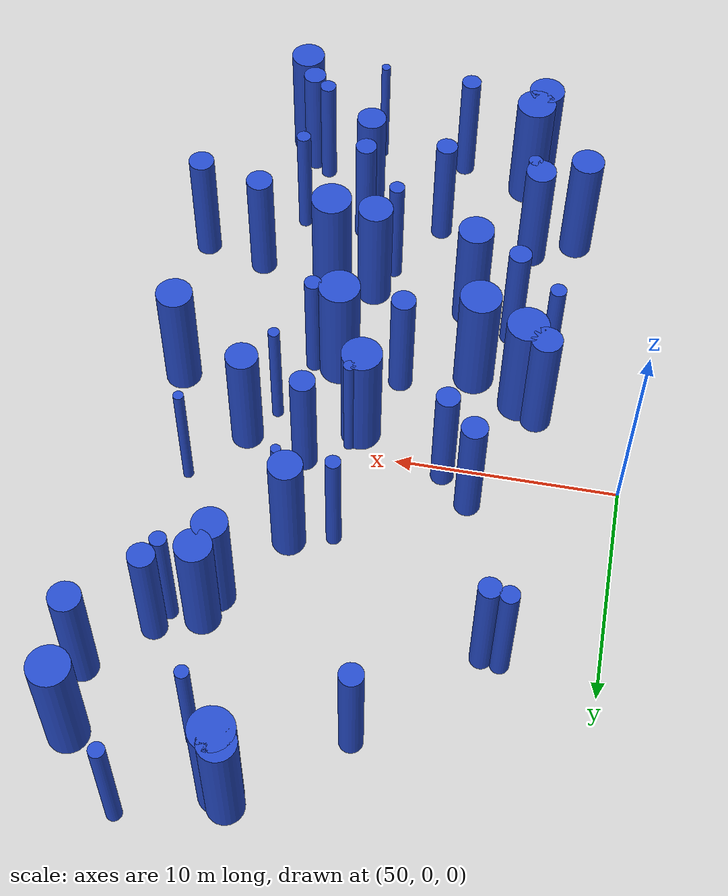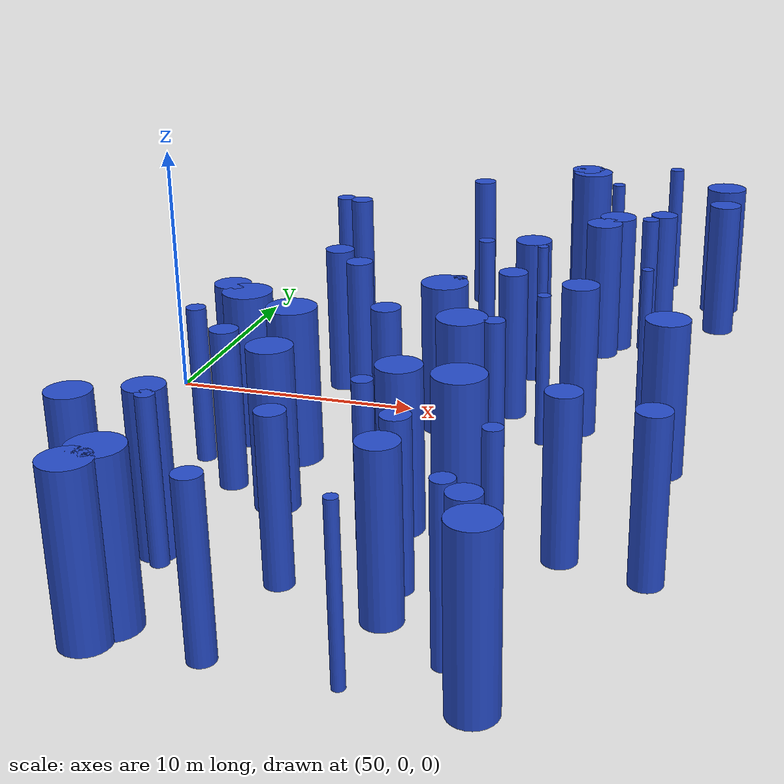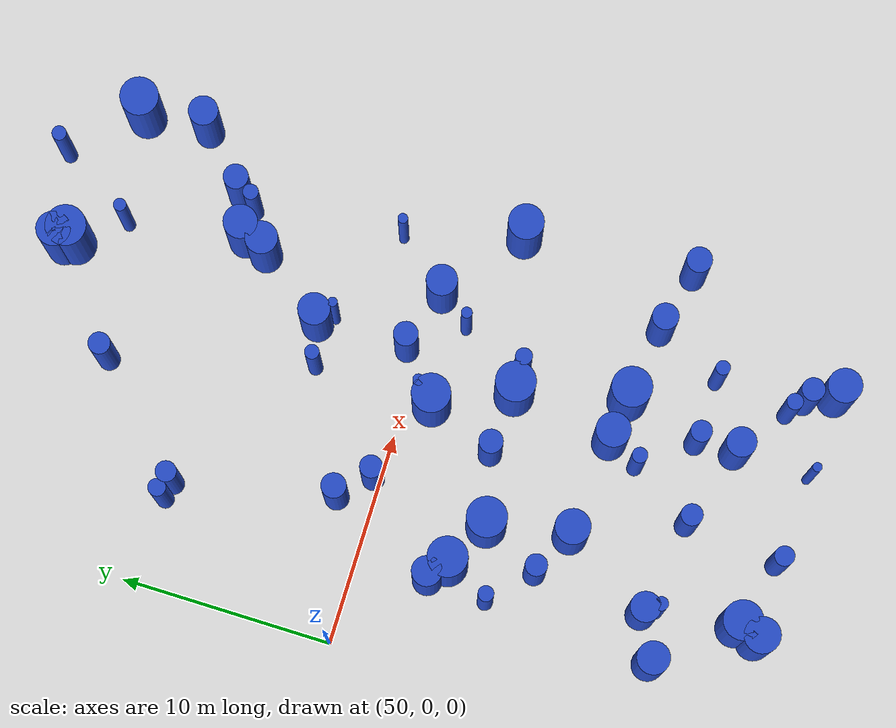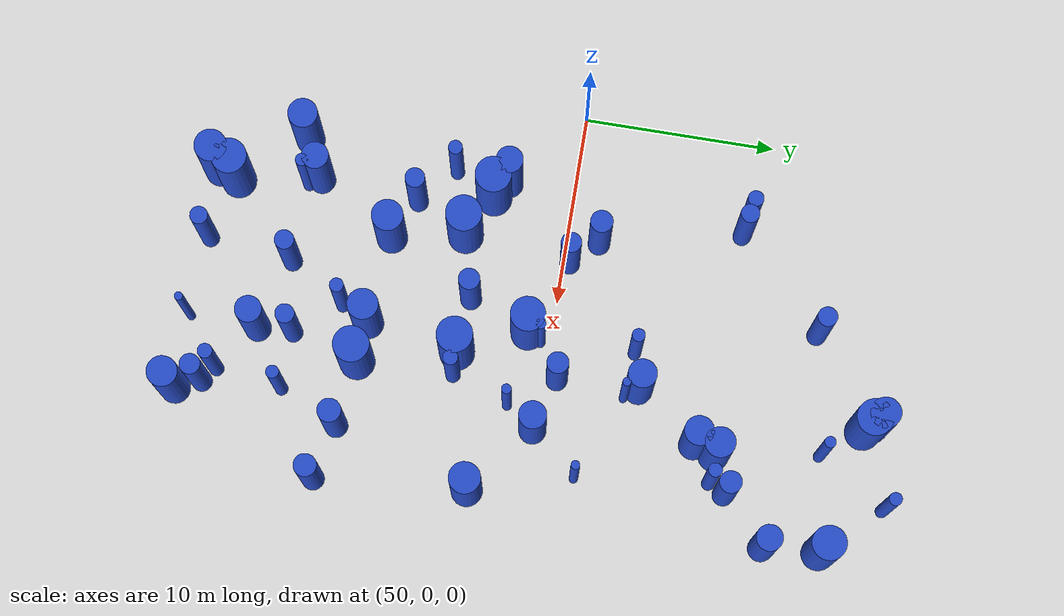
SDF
<sdf version="1.7">
 <world name="default">
  <model name="3">
   <static>1</static>
   <link name="link">
    <inertial>
     <mass>2</mass>
     <inertia><ixx>6.32373</ixx><ixy>0</ixy><ixz>0</ixz><iyy>6.32373</iyy><iyz>0</iyz><izz>0.647451</izz></inertia>
    </inertial>
    <collision name="collision">
     <geometry><cylinder><length>6</length><radius>0.804643</radius></cylinder></geometry>
     <surface><contact><collide_without_contact>1</collide_without_contact></contact></surface>
    </collision>
    <visual name="visual">
     <geometry><cylinder><length>6</length><radius>0.804643</radius></cylinder></geometry>
     <material>
      <script><uri>file://media/materials/scripts/gazebo.material</uri><name>Gazebo/Blue</name></script>
     </material>
    </visual>
    <gravity>0</gravity>
   </link>
   <pose>62.6464 -9.57824 3 0 -0 0</pose>
  </model>
  <model name="8">
   <static>1</static>
   <link name="link">
    <inertial>
     <mass>2</mass>
     <inertia><ixx>6.35619</ixx><ixy>0</ixy><ixz>0</ixz><iyy>6.35619</iyy><iyz>0</iyz><izz>0.712374</izz></inertia>
    </inertial>
    <collision name="collision">
     <geometry><cylinder><length>6</length><radius>0.844022</radius></cylinder></geometry>
     <surface><contact><collide_without_contact>1</collide_without_contact></contact></surface>
    </collision>
    <visual name="visual">
     <geometry><cylinder><length>6</length><radius>0.844022</radius></cylinder></geometry>
     <material>
      <script><uri>file://media/materials/scripts/gazebo.material</uri><name>Gazebo/Blue</name></script>
     </material>
    </visual>
    <gravity>0</gravity>
   </link>
   <pose>55.7877 -18.618 3 0 -0 0</pose>
  </model>
  <model name="16">
   <static>1</static>
   <link name="link">
    <inertial>
     <mass>2</mass>
     <inertia><ixx>6.15456</ixx><ixy>0</ixy><ixz>0</ixz><iyy>6.15456</iyy><iyz>0</iyz><izz>0.309126</izz></inertia>
    </inertial>
    <collision name="collision">
     <geometry><cylinder><length>6</length><radius>0.555991</radius></cylinder></geometry>
     <surface><contact><collide_without_contact>1</collide_without_contact></contact></surface>
    </collision>
    <visual name="visual">
     <geometry><cylinder><length>6</length><radius>0.555991</radius></cylinder></geometry>
     <material>
      <script><uri>file://media/materials/scripts/gazebo.material</uri><name>Gazebo/Blue</name></script>
     </material>
    </visual>
    <gravity>0</gravity>
   </link>
   <pose>60.5216 -4.47597 3 0 -0 0</pose>
  </model>
  <model name="20">
   <static>1</static>
   <link name="link">
    <inertial>
     <mass>2</mass>
     <inertia><ixx>6.44036</ixx><ixy>0</ixy><ixz>0</ixz><iyy>6.44036</iyy><iyz>0</iyz><izz>0.880718</izz></inertia>
    </inertial>
    <collision name="collision">
     <geometry><cylinder><length>6</length><radius>0.938466</radius></cylinder></geometry>
     <surface><contact><collide_without_contact>1</collide_without_contact></contact></surface>
    </collision>
    <visual name="visual">
     <geometry><cylinder><length>6</length><radius>0.938466</radius></cylinder></geometry>
     <material>
      <script><uri>file://media/materials/scripts/gazebo.material</uri><name>Gazebo/Blue</name></script>
     </material>
    </visual>
    <gravity>0</gravity>
   </link>
   <pose>54.9838 -4.14413 3 0 -0 0</pose>
  </model>
  <model name="24">
   <static>1</static>
   <link name="link">
    <inertial>
     <mass>2</mass>
     <inertia><ixx>6.03535</ixx><ixy>0</ixy><ixz>0</ixz><iyy>6.03535</iyy><iyz>0</iyz><izz>0.070702</izz></inertia>
    </inertial>
    <collision name="collision">
     <geometry><cylinder><length>6</length><radius>0.265898</radius></cylinder></geometry>
     <surface><contact><collide_without_contact>1</collide_without_contact></contact></surface>
    </collision>
    <visual name="visual">
     <geometry><cylinder><length>6</length><radius>0.265898</radius></cylinder></geometry>
     <material>
      <script><uri>file://media/materials/scripts/gazebo.material</uri><name>Gazebo/Blue</name></script>
     </material>
    </visual>
    <gravity>0</gravity>
   </link>
   <pose>62.2183 -0.535023 3 0 -0 0</pose>
  </model>
  <model name="29">
   <static>1</static>
   <link name="link">
    <inertial>
     <mass>2</mass>
     <inertia><ixx>6.0245</ixx><ixy>0</ixy><ixz>0</ixz><iyy>6.0245</iyy><iyz>0</iyz><izz>0.0489991</izz></inertia>
    </inertial>
    <collision name="collision">
     <geometry><cylinder><length>6</length><radius>0.221357</radius></cylinder></geometry>
     <surface><contact><collide_without_contact>1</collide_without_contact></contact></surface>
    </collision>
    <visual name="visual">
     <geometry><cylinder><length>6</length><radius>0.221357</radius></cylinder></geometry>
     <material>
      <script><uri>file://media/materials/scripts/gazebo.material</uri><name>Gazebo/Blue</name></script>
     </material>
    </visual>
    <gravity>0</gravity>
   </link>
   <pose>64.4402 4.20646 3 0 -0 0</pose>
  </model>
  <model name="37">
   <static>1</static>
   <link name="link">
    <inertial>
     <mass>2</mass>
     <inertia><ixx>6.05629</ixx><ixy>0</ixy><ixz>0</ixz><iyy>6.05629</iyy><iyz>0</iyz><izz>0.112587</izz></inertia>
    </inertial>
    <collision name="collision">
     <geometry><cylinder><length>6</length><radius>0.33554</radius></cylinder></geometry>
     <surface><contact><collide_without_contact>1</collide_without_contact></contact></surface>
    </collision>
    <visual name="visual">
     <geometry><cylinder><length>6</length><radius>0.33554</radius></cylinder></geometry>
     <material>
      <script><uri>file://media/materials/scripts/gazebo.material</uri><name>Gazebo/Blue</name></script>
     </material>
    </visual>
    <gravity>0</gravity>
   </link>
   <pose>68.1482 18.3489 3 0 -0 0</pose>
  </model>
  <model name="40">
   <static>1</static>
   <link name="link">
    <inertial>
     <mass>2</mass>
     <inertia><ixx>6.13935</ixx><ixy>0</ixy><ixz>0</ixz><iyy>6.13935</iyy><iyz>0</iyz><izz>0.278704</izz></inertia>
    </inertial>
    <collision name="collision">
     <geometry><cylinder><length>6</length><radius>0.527924</radius></cylinder></geometry>
     <surface><contact><collide_without_contact>1</collide_without_contact></contact></surface>
    </collision>
    <visual name="visual">
     <geometry><cylinder><length>6</length><radius>0.527924</radius></cylinder></geometry>
     <material>
      <script><uri>file://media/materials/scripts/gazebo.material</uri><name>Gazebo/Blue</name></script>
     </material>
    </visual>
    <gravity>0</gravity>
   </link>
   <pose>57.8383 0.334925 3 0 -0 0</pose>
  </model>
  <model name="47">
   <static>1</static>
   <link name="link">
    <inertial>
     <mass>2</mass>
     <inertia><ixx>6.07665</ixx><ixy>0</ixy><ixz>0</ixz><iyy>6.07665</iyy><iyz>0</iyz><izz>0.153298</izz></inertia>
    </inertial>
    <collision name="collision">
     <geometry><cylinder><length>6</length><radius>0.391533</radius></cylinder></geometry>
     <surface><contact><collide_without_contact>1</collide_without_contact></contact></surface>
    </collision>
    <visual name="visual">
     <geometry><cylinder><length>6</length><radius>0.391533</radius></cylinder></geometry>
     <material>
      <script><uri>file://media/materials/scripts/gazebo.material</uri><name>Gazebo/Blue</name></script>
     </material>
    </visual>
    <gravity>0</gravity>
   </link>
   <pose>64.6323 -4.75905 3 0 -0 0</pose>
  </model>
  <model name="49">
   <static>1</static>
   <link name="link">
    <inertial>
     <mass>2</mass>
     <inertia><ixx>6.14289</ixx><ixy>0</ixy><ixz>0</ixz><iyy>6.14289</iyy><iyz>0</iyz><izz>0.285777</izz></inertia>
    </inertial>
    <collision name="collision">
     <geometry><cylinder><length>6</length><radius>0.534581</radius></cylinder></geometry>
     <surface><contact><collide_without_contact>1</collide_without_contact></contact></surface>
    </collision>
    <visual name="visual">
     <geometry><cylinder><length>6</length><radius>0.534581</radius></cylinder></geometry>
     <material>
      <script><uri>file://media/materials/scripts/gazebo.material</uri><name>Gazebo/Blue</name></script>
     </material>
    </visual>
    <gravity>0</gravity>
   </link>
   <pose>67.0462 -17.6442 3 0 -0 0</pose>
  </model>
  <model name="57">
   <static>1</static>
   <link name="link">
    <inertial>
     <mass>2</mass>
     <inertia>
      <ixx>6.04355</ixx>
      <ixy>0</ixy>
      <ixz>0</ixz>
      <iyy>6.04355</iyy>
      <iyz>0</iyz>
      <izz>0.0870977</izz>
     </inertia>
    </inertial>
    <collision name="collision">
     <geometry><cylinder><length>6</length><radius>0.295123</radius></cylinder></geometry>
     <surface><contact><collide_without_contact>1</collide_without_contact></contact></surface>
    </collision>
    <visual name="visual">
     <geometry><cylinder><length>6</length><radius>0.295123</radius></cylinder></geometry>
     <material>
      <script><uri>file://media/materials/scripts/gazebo.material</uri><name>Gazebo/Blue</name></script>
     </material>
    </visual>
    <gravity>0</gravity>
   </link>
   <pose>65.8384 14.7256 3 0 -0 0</pose>
  </model>
  <model name="62">
   <static>1</static>
   <link name="link">
    <inertial>
     <mass>2</mass>
     <inertia>
      <ixx>6.02704</ixx>
      <ixy>0</ixy>
      <ixz>0</ixz>
      <iyy>6.02704</iyy>
      <iyz>0</iyz>
      <izz>0.0540705</izz>
     </inertia>
    </inertial>
    <collision name="collision">
     <geometry><cylinder><length>6</length><radius>0.232531</radius></cylinder></geometry>
     <surface><contact><collide_without_contact>1</collide_without_contact></contact></surface>
    </collision>
    <visual name="visual">
     <geometry><cylinder><length>6</length><radius>0.232531</radius></cylinder></geometry>
     <material>
      <script><uri>file://media/materials/scripts/gazebo.material</uri><name>Gazebo/Blue</name></script>
     </material>
    </visual>
    <gravity>0</gravity>
   </link>
   <pose>69.0155 2.30709 3 0 -0 0</pose>
  </model>
  <model name="64">
   <static>1</static>
   <link name="link">
    <inertial>
     <mass>2</mass>
     <inertia><ixx>6.28961</ixx><ixy>0</ixy><ixz>0</ixz><iyy>6.28961</iyy><iyz>0</iyz><izz>0.579212</izz></inertia>
    </inertial>
    <collision name="collision">
     <geometry><cylinder><length>6</length><radius>0.76106</radius></cylinder></geometry>
     <surface><contact><collide_without_contact>1</collide_without_contact></contact></surface>
    </collision>
    <visual name="visual">
     <geometry><cylinder><length>6</length><radius>0.76106</radius></cylinder></geometry>
     <material>
      <script><uri>file://media/materials/scripts/gazebo.material</uri><name>Gazebo/Blue</name></script>
     </material>
    </visual>
    <gravity>0</gravity>
   </link>
   <pose>66.2997 8.17107 3 0 -0 0</pose>
  </model>
  <model name="69">
   <static>1</static>
   <link name="link">
    <inertial>
     <mass>2</mass>
     <inertia><ixx>6.13304</ixx><ixy>0</ixy><ixz>0</ixz><iyy>6.13304</iyy><iyz>0</iyz><izz>0.266084</izz></inertia>
    </inertial>
    <collision name="collision">
     <geometry><cylinder><length>6</length><radius>0.515834</radius></cylinder></geometry>
     <surface><contact><collide_without_contact>1</collide_without_contact></contact></surface>
    </collision>
    <visual name="visual">
     <geometry><cylinder><length>6</length><radius>0.515834</radius></cylinder></geometry>
     <material>
      <script><uri>file://media/materials/scripts/gazebo.material</uri><name>Gazebo/Blue</name></script>
     </material>
    </visual>
    <gravity>0</gravity>
   </link>
   <pose>55.7984 -8.05058 3 0 -0 0</pose>
  </model>
  <model name="75">
   <static>1</static>
   <link name="link">
    <inertial>
     <mass>2</mass>
     <inertia><ixx>6.43782</ixx><ixy>0</ixy><ixz>0</ixz><iyy>6.43782</iyy><iyz>0</iyz><izz>0.87563</izz></inertia>
    </inertial>
    <collision name="collision">
     <geometry><cylinder><length>6</length><radius>0.935751</radius></cylinder></geometry>
     <surface><contact><collide_without_contact>1</collide_without_contact></contact></surface>
    </collision>
    <visual name="visual">
     <geometry><cylinder><length>6</length><radius>0.935751</radius></cylinder></geometry>
     <material>
      <script><uri>file://media/materials/scripts/gazebo.material</uri><name>Gazebo/Blue</name></script>
     </material>
    </visual>
    <gravity>0</gravity>
   </link>
   <pose>63.437 -4.74428 3 0 -0 0</pose>
  </model>
  <model name="81">
   <static>1</static>
   <link name="link">
    <inertial>
     <mass>2</mass>
     <inertia><ixx>6.39682</ixx><ixy>0</ixy><ixz>0</ixz><iyy>6.39682</iyy><iyz>0</iyz><izz>0.793637</izz></inertia>
    </inertial>
    <collision name="collision">
     <geometry><cylinder><length>6</length><radius>0.890863</radius></cylinder></geometry>
     <surface><contact><collide_without_contact>1</collide_without_contact></contact></surface>
    </collision>
    <visual name="visual">
     <geometry><cylinder><length>6</length><radius>0.890863</radius></cylinder></geometry>
     <material>
      <script><uri>file://media/materials/scripts/gazebo.material</uri><name>Gazebo/Blue</name></script>
     </material>
    </visual>
    <gravity>0</gravity>
   </link>
   <pose>70.8405 15.4024 3 0 -0 0</pose>
  </model>
  <model name="88">
   <static>1</static>
   <link name="link">
    <inertial>
     <mass>2</mass>
     <inertia><ixx>6.06537</ixx><ixy>0</ixy><ixz>0</ixz><iyy>6.06537</iyy><iyz>0</iyz><izz>0.13075</izz></inertia>
    </inertial>
    <collision name="collision">
     <geometry><cylinder><length>6</length><radius>0.361593</radius></cylinder></geometry>
     <surface><contact><collide_without_contact>1</collide_without_contact></contact></surface>
    </collision>
    <visual name="visual">
     <geometry><cylinder><length>6</length><radius>0.361593</radius></cylinder></geometry>
     <material>
      <script><uri>file://media/materials/scripts/gazebo.material</uri><name>Gazebo/Blue</name></script>
     </material>
    </visual>
    <gravity>0</gravity>
   </link>
   <pose>61.8977 -11.0457 3 0 -0 0</pose>
  </model>
  <model name="99">
   <static>1</static>
   <link name="link">
    <inertial>
     <mass>2</mass>
     <inertia><ixx>6.13049</ixx><ixy>0</ixy><ixz>0</ixz><iyy>6.13049</iyy><iyz>0</iyz><izz>0.260973</izz></inertia>
    </inertial>
    <collision name="collision">
     <geometry><cylinder><length>6</length><radius>0.510855</radius></cylinder></geometry>
     <surface><contact><collide_without_contact>1</collide_without_contact></contact></surface>
    </collision>
    <visual name="visual">
     <geometry><cylinder><length>6</length><radius>0.510855</radius></cylinder></geometry>
     <material>
      <script><uri>file://media/materials/scripts/gazebo.material</uri><name>Gazebo/Blue</name></script>
     </material>
    </visual>
    <gravity>0</gravity>
   </link>
   <pose>59.5506 13.6937 3 0 -0 0</pose>
  </model>
  <model name="108">
   <static>1</static>
   <link name="link">
    <inertial>
     <mass>2</mass>
     <inertia><ixx>6.24076</ixx><ixy>0</ixy><ixz>0</ixz><iyy>6.24076</iyy><iyz>0</iyz><izz>0.481525</izz></inertia>
    </inertial>
    <collision name="collision">
     <geometry><cylinder><length>6</length><radius>0.69392</radius></cylinder></geometry>
     <surface><contact><collide_without_contact>1</collide_without_contact></contact></surface>
    </collision>
    <visual name="visual">
     <geometry><cylinder><length>6</length><radius>0.69392</radius></cylinder></geometry>
     <material>
      <script><uri>file://media/materials/scripts/gazebo.material</uri><name>Gazebo/Blue</name></script>
     </material>
    </visual>
    <gravity>0</gravity>
   </link>
   <pose>63.8163 -15.2405 3 0 -0 0</pose>
  </model>
  <model name="110">
   <static>1</static>
   <link name="link">
    <inertial>
     <mass>2</mass>
     <inertia><ixx>6.40953</ixx><ixy>0</ixy><ixz>0</ixz><iyy>6.40953</iyy><iyz>0</iyz><izz>0.819064</izz></inertia>
    </inertial>
    <collision name="collision">
     <geometry><cylinder><length>6</length><radius>0.905021</radius></cylinder></geometry>
     <surface><contact><collide_without_contact>1</collide_without_contact></contact></surface>
    </collision>
    <visual name="visual">
     <geometry><cylinder><length>6</length><radius>0.905021</radius></cylinder></geometry>
     <material>
      <script><uri>file://media/materials/scripts/gazebo.material</uri><name>Gazebo/Blue</name></script>
     </material>
    </visual>
    <gravity>0</gravity>
   </link>
   <pose>61.8127 -1.25307 3 0 -0 0</pose>
  </model>
  <model name="119">
   <static>1</static>
   <link name="link">
    <inertial>
     <mass>2</mass>
     <inertia><ixx>6.33909</ixx><ixy>0</ixy><ixz>0</ixz><iyy>6.33909</iyy><iyz>0</iyz><izz>0.67818</izz></inertia>
    </inertial>
    <collision name="collision">
     <geometry><cylinder><length>6</length><radius>0.823517</radius></cylinder></geometry>
     <surface><contact><collide_without_contact>1</collide_without_contact></contact></surface>
    </collision>
    <visual name="visual">
     <geometry><cylinder><length>6</length><radius>0.823517</radius></cylinder></geometry>
     <material>
      <script><uri>file://media/materials/scripts/gazebo.material</uri><name>Gazebo/Blue</name></script>
     </material>
    </visual>
    <gravity>0</gravity>
   </link>
   <pose>70.5233 -3.06398 3 0 -0 0</pose>
  </model>
  <model name="147">
   <static>1</static>
   <link name="link">
    <inertial>
     <mass>2</mass>
     <inertia><ixx>6.2472</ixx><ixy>0</ixy><ixz>0</ixz><iyy>6.2472</iyy><iyz>0</iyz><izz>0.494401</izz></inertia>
    </inertial>
    <collision name="collision">
     <geometry><cylinder><length>6</length><radius>0.703136</radius></cylinder></geometry>
     <surface><contact><collide_without_contact>1</collide_without_contact></contact></surface>
    </collision>
    <visual name="visual">
     <geometry><cylinder><length>6</length><radius>0.703136</radius></cylinder></geometry>
     <material>
      <script><uri>file://media/materials/scripts/gazebo.material</uri><name>Gazebo/Blue</name></script>
     </material>
    </visual>
    <gravity>0</gravity>
   </link>
   <pose>55.4572 -13.2677 3 0 -0 0</pose>
  </model>
  <model name="148">
   <static>1</static>
   <link name="link">
    <inertial>
     <mass>2</mass>
     <inertia><ixx>6.16655</ixx><ixy>0</ixy><ixz>0</ixz><iyy>6.16655</iyy><iyz>0</iyz><izz>0.3331</izz></inertia>
    </inertial>
    <collision name="collision">
     <geometry><cylinder><length>6</length><radius>0.577148</radius></cylinder></geometry>
     <surface><contact><collide_without_contact>1</collide_without_contact></contact></surface>
    </collision>
    <visual name="visual">
     <geometry><cylinder><length>6</length><radius>0.577148</radius></cylinder></geometry>
     <material>
      <script><uri>file://media/materials/scripts/gazebo.material</uri><name>Gazebo/Blue</name></script>
     </material>
    </visual>
    <gravity>0</gravity>
   </link>
   <pose>68.6122 10.1034 3 0 -0 0</pose>
  </model>
  <model name="156">
   <static>1</static>
   <link name="link">
    <inertial>
     <mass>2</mass>
     <inertia><ixx>6.2462</ixx><ixy>0</ixy><ixz>0</ixz><iyy>6.2462</iyy><iyz>0</iyz><izz>0.492399</izz></inertia>
    </inertial>
    <collision name="collision">
     <geometry><cylinder><length>6</length><radius>0.701712</radius></cylinder></geometry>
     <surface><contact><collide_without_contact>1</collide_without_contact></contact></surface>
    </collision>
    <visual name="visual">
     <geometry><cylinder><length>6</length><radius>0.701712</radius></cylinder></geometry>
     <material>
      <script><uri>file://media/materials/scripts/gazebo.material</uri><name>Gazebo/Blue</name></script>
     </material>
    </visual>
    <gravity>0</gravity>
   </link>
   <pose>54.0935 -3.44264 3 0 -0 0</pose>
  </model>
  <model name="158">
   <static>1</static>
   <link name="link">
    <inertial>
     <mass>2</mass>
     <inertia><ixx>6.12372</ixx><ixy>0</ixy><ixz>0</ixz><iyy>6.12372</iyy><iyz>0</iyz><izz>0.24745</izz></inertia>
    </inertial>
    <collision name="collision">
     <geometry><cylinder><length>6</length><radius>0.497443</radius></cylinder></geometry>
     <surface><contact><collide_without_contact>1</collide_without_contact></contact></surface>
    </collision>
    <visual name="visual">
     <geometry><cylinder><length>6</length><radius>0.497443</radius></cylinder></geometry>
     <material>
      <script><uri>file://media/materials/scripts/gazebo.material</uri><name>Gazebo/Blue</name></script>
     </material>
    </visual>
    <gravity>0</gravity>
   </link>
   <pose>63.7529 -13.376 3 0 -0 0</pose>
  </model>
  <model name="159">
   <static>1</static>
   <link name="link">
    <inertial>
     <mass>2</mass>
     <inertia><ixx>6.12758</ixx><ixy>0</ixy><ixz>0</ixz><iyy>6.12758</iyy><iyz>0</iyz><izz>0.255169</izz></inertia>
    </inertial>
    <collision name="collision">
     <geometry><cylinder><length>6</length><radius>0.505142</radius></cylinder></geometry>
     <surface><contact><collide_without_contact>1</collide_without_contact></contact></surface>
    </collision>
    <visual name="visual">
     <geometry><cylinder><length>6</length><radius>0.505142</radius></cylinder></geometry>
     <material>
      <script><uri>file://media/materials/scripts/gazebo.material</uri><name>Gazebo/Blue</name></script>
     </material>
    </visual>
    <gravity>0</gravity>
   </link>
   <pose>60.0142 -14.0545 3 0 -0 0</pose>
  </model>
  <model name="165">
   <static>1</static>
   <link name="link">
    <inertial>
     <mass>2</mass>
     <inertia><ixx>6.31487</ixx><ixy>0</ixy><ixz>0</ixz><iyy>6.31487</iyy><iyz>0</iyz><izz>0.629742</izz></inertia>
    </inertial>
    <collision name="collision">
     <geometry><cylinder><length>6</length><radius>0.793563</radius></cylinder></geometry>
     <surface><contact><collide_without_contact>1</collide_without_contact></contact></surface>
    </collision>
    <visual name="visual">
     <geometry><cylinder><length>6</length><radius>0.793563</radius></cylinder></geometry>
     <material>
      <script><uri>file://media/materials/scripts/gazebo.material</uri><name>Gazebo/Blue</name></script>
     </material>
    </visual>
    <gravity>0</gravity>
   </link>
   <pose>67.6325 -18.9597 3 0 -0 0</pose>
  </model>
  <model name="170">
   <static>1</static>
   <link name="link">
    <inertial>
     <mass>2</mass>
     <inertia><ixx>6.29419</ixx><ixy>0</ixy><ixz>0</ixz><iyy>6.29419</iyy><iyz>0</iyz><izz>0.588384</izz></inertia>
    </inertial>
    <collision name="collision">
     <geometry><cylinder><length>6</length><radius>0.767062</radius></cylinder></geometry>
     <surface><contact><collide_without_contact>1</collide_without_contact></contact></surface>
    </collision>
    <visual name="visual">
     <geometry><cylinder><length>6</length><radius>0.767062</radius></cylinder></geometry>
     <material>
      <script><uri>file://media/materials/scripts/gazebo.material</uri><name>Gazebo/Blue</name></script>
     </material>
    </visual>
    <gravity>0</gravity>
   </link>
   <pose>53.3791 -14.2623 3 0 -0 0</pose>
  </model>
  <model name="175">
   <static>1</static>
   <link name="link">
    <inertial>
     <mass>2</mass>
     <inertia><ixx>6.05736</ixx><ixy>0</ixy><ixz>0</ixz><iyy>6.05736</iyy><iyz>0</iyz><izz>0.114717</izz></inertia>
    </inertial>
    <collision name="collision">
     <geometry><cylinder><length>6</length><radius>0.338699</radius></cylinder></geometry>
     <surface><contact><collide_without_contact>1</collide_without_contact></contact></surface>
    </collision>
    <visual name="visual">
     <geometry><cylinder><length>6</length><radius>0.338699</radius></cylinder></geometry>
     <material>
      <script><uri>file://media/materials/scripts/gazebo.material</uri><name>Gazebo/Blue</name></script>
     </material>
    </visual>
    <gravity>0</gravity>
   </link>
   <pose>62.0029 4.42406 3 0 -0 0</pose>
  </model>
  <model name="177">
   <static>1</static>
   <link name="link">
    <inertial>
     <mass>2</mass>
     <inertia><ixx>6.16054</ixx><ixy>0</ixy><ixz>0</ixz><iyy>6.16054</iyy><iyz>0</iyz><izz>0.321076</izz></inertia>
    </inertial>
    <collision name="collision">
     <geometry><cylinder><length>6</length><radius>0.566635</radius></cylinder></geometry>
     <surface><contact><collide_without_contact>1</collide_without_contact></contact></surface>
    </collision>
    <visual name="visual">
     <geometry><cylinder><length>6</length><radius>0.566635</radius></cylinder></geometry>
     <material>
      <script><uri>file://media/materials/scripts/gazebo.material</uri><name>Gazebo/Blue</name></script>
     </material>
    </visual>
    <gravity>0</gravity>
   </link>
   <pose>64.0385 0.626699 3 0 -0 0</pose>
  </model>
  <model name="179">
   <static>1</static>
   <link name="link">
    <inertial>
     <mass>2</mass>
     <inertia><ixx>6.17533</ixx><ixy>0</ixy><ixz>0</ixz><iyy>6.17533</iyy><iyz>0</iyz><izz>0.350655</izz></inertia>
    </inertial>
    <collision name="collision">
     <geometry><cylinder><length>6</length><radius>0.592162</radius></cylinder></geometry>
     <surface><contact><collide_without_contact>1</collide_without_contact></contact></surface>
    </collision>
    <visual name="visual">
     <geometry><cylinder><length>6</length><radius>0.592162</radius></cylinder></geometry>
     <material>
      <script><uri>file://media/materials/scripts/gazebo.material</uri><name>Gazebo/Blue</name></script>
     </material>
    </visual>
    <gravity>0</gravity>
   </link>
   <pose>71.1699 -11.0462 3 0 -0 0</pose>
  </model>
  <model name="186">
   <static>1</static>
   <link name="link">
    <inertial>
     <mass>2</mass>
     <inertia><ixx>6.06527</ixx><ixy>0</ixy><ixz>0</ixz><iyy>6.06527</iyy><iyz>0</iyz><izz>0.130536</izz></inertia>
    </inertial>
    <collision name="collision">
     <geometry><cylinder><length>6</length><radius>0.361297</radius></cylinder></geometry>
     <surface><contact><collide_without_contact>1</collide_without_contact></contact></surface>
    </collision>
    <visual name="visual">
     <geometry><cylinder><length>6</length><radius>0.361297</radius></cylinder></geometry>
     <material>
      <script><uri>file://media/materials/scripts/gazebo.material</uri><name>Gazebo/Blue</name></script>
     </material>
    </visual>
    <gravity>0</gravity>
   </link>
   <pose>68.142 9.25386 3 0 -0 0</pose>
  </model>
  <model name="199">
   <static>1</static>
   <link name="link">
    <inertial>
     <mass>2</mass>
     <inertia><ixx>6.31116</ixx><ixy>0</ixy><ixz>0</ixz><iyy>6.31116</iyy><iyz>0</iyz><izz>0.622311</izz></inertia>
    </inertial>
    <collision name="collision">
     <geometry><cylinder><length>6</length><radius>0.788867</radius></cylinder></geometry>
     <surface><contact><collide_without_contact>1</collide_without_contact></contact></surface>
    </collision>
    <visual name="visual">
     <geometry><cylinder><length>6</length><radius>0.788867</radius></cylinder></geometry>
     <material>
      <script><uri>file://media/materials/scripts/gazebo.material</uri><name>Gazebo/Blue</name></script>
     </material>
    </visual>
    <gravity>0</gravity>
   </link>
   <pose>66.7102 9.29517 3 0 -0 0</pose>
  </model>
  <model name="203">
   <static>1</static>
   <link name="link">
    <inertial>
     <mass>2</mass>
     <inertia><ixx>6.18882</ixx><ixy>0</ixy><ixz>0</ixz><iyy>6.18882</iyy><iyz>0</iyz><izz>0.377638</izz></inertia>
    </inertial>
    <collision name="collision">
     <geometry><cylinder><length>6</length><radius>0.614523</radius></cylinder></geometry>
     <surface><contact><collide_without_contact>1</collide_without_contact></contact></surface>
    </collision>
    <visual name="visual">
     <geometry><cylinder><length>6</length><radius>0.614523</radius></cylinder></geometry>
     <material>
      <script><uri>file://media/materials/scripts/gazebo.material</uri><name>Gazebo/Blue</name></script>
     </material>
    </visual>
    <gravity>0</gravity>
   </link>
   <pose>68.2499 -10.3285 3 0 -0 0</pose>
  </model>
  <model name="205">
   <static>1</static>
   <link name="link">
    <inertial>
     <mass>2</mass>
     <inertia><ixx>6.10686</ixx><ixy>0</ixy><ixz>0</ixz><iyy>6.10686</iyy><iyz>0</iyz><izz>0.213728</izz></inertia>
    </inertial>
    <collision name="collision">
     <geometry><cylinder><length>6</length><radius>0.462308</radius></cylinder></geometry>
     <surface><contact><collide_without_contact>1</collide_without_contact></contact></surface>
    </collision>
    <visual name="visual">
     <geometry><cylinder><length>6</length><radius>0.462308</radius></cylinder></geometry>
     <material>
      <script><uri>file://media/materials/scripts/gazebo.material</uri><name>Gazebo/Blue</name></script>
     </material>
    </visual>
    <gravity>0</gravity>
   </link>
   <pose>59.4641 -18.5496 3 0 -0 0</pose>
  </model>
  <model name="212">
   <static>1</static>
   <link name="link">
    <inertial>
     <mass>2</mass>
     <inertia><ixx>6.26079</ixx><ixy>0</ixy><ixz>0</ixz><iyy>6.26079</iyy><iyz>0</iyz><izz>0.521588</izz></inertia>
    </inertial>
    <collision name="collision">
     <geometry><cylinder><length>6</length><radius>0.722211</radius></cylinder></geometry>
     <surface><contact><collide_without_contact>1</collide_without_contact></contact></surface>
    </collision>
    <visual name="visual">
     <geometry><cylinder><length>6</length><radius>0.722211</radius></cylinder></geometry>
     <material>
      <script><uri>file://media/materials/scripts/gazebo.material</uri><name>Gazebo/Blue</name></script>
     </material>
    </visual>
    <gravity>0</gravity>
   </link>
   <pose>66.8526 -0.204385 3 0 -0 0</pose>
  </model>
  <model name="214">
   <static>1</static>
   <link name="link">
    <inertial>
     <mass>2</mass>
     <inertia><ixx>6.23355</ixx><ixy>0</ixy><ixz>0</ixz><iyy>6.23355</iyy><iyz>0</iyz><izz>0.467097</izz></inertia>
    </inertial>
    <collision name="collision">
     <geometry><cylinder><length>6</length><radius>0.683445</radius></cylinder></geometry>
     <surface><contact><collide_without_contact>1</collide_without_contact></contact></surface>
    </collision>
    <visual name="visual">
     <geometry><cylinder><length>6</length><radius>0.683445</radius></cylinder></geometry>
     <material>
      <script><uri>file://media/materials/scripts/gazebo.material</uri><name>Gazebo/Blue</name></script>
     </material>
    </visual>
    <gravity>0</gravity>
   </link>
   <pose>71.0638 12.4281 3 0 -0 0</pose>
  </model>
  <model name="218">
   <static>1</static>
   <link name="link">
    <inertial>
     <mass>2</mass>
     <inertia><ixx>6.11765</ixx><ixy>0</ixy><ixz>0</ixz><iyy>6.11765</iyy><iyz>0</iyz><izz>0.235309</izz></inertia>
    </inertial>
    <collision name="collision">
     <geometry><cylinder><length>6</length><radius>0.485086</radius></cylinder></geometry>
     <surface><contact><collide_without_contact>1</collide_without_contact></contact></surface>
    </collision>
    <visual name="visual">
     <geometry><cylinder><length>6</length><radius>0.485086</radius></cylinder></geometry>
     <material>
      <script><uri>file://media/materials/scripts/gazebo.material</uri><name>Gazebo/Blue</name></script>
     </material>
    </visual>
    <gravity>0</gravity>
   </link>
   <pose>54.913 9.06717 3 0 -0 0</pose>
  </model>
  <model name="219">
   <static>1</static>
   <link name="link">
    <inertial>
     <mass>2</mass>
     <inertia>
      <ixx>6.02367</ixx>
      <ixy>0</ixy>
      <ixz>0</ixz>
      <iyy>6.02367</iyy>
      <iyz>0</iyz>
      <izz>0.0473453</izz>
     </inertia>
    </inertial>
    <collision name="collision">
     <geometry><cylinder><length>6</length><radius>0.21759</radius></cylinder></geometry>
     <surface><contact><collide_without_contact>1</collide_without_contact></contact></surface>
    </collision>
    <visual name="visual">
     <geometry><cylinder><length>6</length><radius>0.21759</radius></cylinder></geometry>
     <material>
      <script><uri>file://media/materials/scripts/gazebo.material</uri><name>Gazebo/Blue</name></script>
     </material>
    </visual>
    <gravity>0</gravity>
   </link>
   <pose>63.7274 -18.8105 3 0 -0 0</pose>
  </model>
  <model name="220">
   <static>1</static>
   <link name="link">
    <inertial>
     <mass>2</mass>
     <inertia><ixx>6.07244</ixx><ixy>0</ixy><ixz>0</ixz><iyy>6.07244</iyy><iyz>0</iyz><izz>0.144872</izz></inertia>
    </inertial>
    <collision name="collision">
     <geometry><cylinder><length>6</length><radius>0.38062</radius></cylinder></geometry>
     <surface><contact><collide_without_contact>1</collide_without_contact></contact></surface>
    </collision>
    <visual name="visual">
     <geometry><cylinder><length>6</length><radius>0.38062</radius></cylinder></geometry>
     <material>
      <script><uri>file://media/materials/scripts/gazebo.material</uri><name>Gazebo/Blue</name></script>
     </material>
    </visual>
    <gravity>0</gravity>
   </link>
   <pose>66.2706 -17.0082 3 0 -0 0</pose>
  </model>
  <model name="224">
   <static>1</static>
   <link name="link">
    <inertial>
     <mass>2</mass>
     <inertia><ixx>6.08446</ixx><ixy>0</ixy><ixz>0</ixz><iyy>6.08446</iyy><iyz>0</iyz><izz>0.168915</izz></inertia>
    </inertial>
    <collision name="collision">
     <geometry><cylinder><length>6</length><radius>0.410993</radius></cylinder></geometry>
     <surface><contact><collide_without_contact>1</collide_without_contact></contact></surface>
    </collision>
    <visual name="visual">
     <geometry><cylinder><length>6</length><radius>0.410993</radius></cylinder></geometry>
     <material>
      <script><uri>file://media/materials/scripts/gazebo.material</uri><name>Gazebo/Blue</name></script>
     </material>
    </visual>
    <gravity>0</gravity>
   </link>
   <pose>54.1079 9.23179 3 0 -0 0</pose>
  </model>
  <model name="237">
   <static>1</static>
   <link name="link">
    <inertial>
     <mass>2</mass>
     <inertia><ixx>6.33483</ixx><ixy>0</ixy><ixz>0</ixz><iyy>6.33483</iyy><iyz>0</iyz><izz>0.669664</izz></inertia>
    </inertial>
    <collision name="collision">
     <geometry><cylinder><length>6</length><radius>0.81833</radius></cylinder></geometry>
     <surface><contact><collide_without_contact>1</collide_without_contact></contact></surface>
    </collision>
    <visual name="visual">
     <geometry><cylinder><length>6</length><radius>0.81833</radius></cylinder></geometry>
     <material>
      <script><uri>file://media/materials/scripts/gazebo.material</uri><name>Gazebo/Blue</name></script>
     </material>
    </visual>
    <gravity>0</gravity>
   </link>
   <pose>57.9345 -9.11334 3 0 -0 0</pose>
  </model>
  <model name="241">
   <static>1</static>
   <link name="link">
    <inertial>
     <mass>2</mass>
     <inertia><ixx>6.06686</ixx><ixy>0</ixy><ixz>0</ixz><iyy>6.06686</iyy><iyz>0</iyz><izz>0.133721</izz></inertia>
    </inertial>
    <collision name="collision">
     <geometry><cylinder><length>6</length><radius>0.365678</radius></cylinder></geometry>
     <surface><contact><collide_without_contact>1</collide_without_contact></contact></surface>
    </collision>
    <visual name="visual">
     <geometry><cylinder><length>6</length><radius>0.365678</radius></cylinder></geometry>
     <material>
      <script><uri>file://media/materials/scripts/gazebo.material</uri><name>Gazebo/Blue</name></script>
     </material>
    </visual>
    <gravity>0</gravity>
   </link>
   <pose>53.9058 -6.27197 3 0 -0 0</pose>
  </model>
  <model name="252">
   <static>1</static>
   <link name="link">
    <inertial>
     <mass>2</mass>
     <inertia><ixx>6.05641</ixx><ixy>0</ixy><ixz>0</ixz><iyy>6.05641</iyy><iyz>0</iyz><izz>0.11282</izz></inertia>
    </inertial>
    <collision name="collision">
     <geometry><cylinder><length>6</length><radius>0.335887</radius></cylinder></geometry>
     <surface><contact><collide_without_contact>1</collide_without_contact></contact></surface>
    </collision>
    <visual name="visual">
     <geometry><cylinder><length>6</length><radius>0.335887</radius></cylinder></geometry>
     <material>
      <script><uri>file://media/materials/scripts/gazebo.material</uri><name>Gazebo/Blue</name></script>
     </material>
    </visual>
    <gravity>0</gravity>
   </link>
   <pose>66.7795 -13.4738 3 0 -0 0</pose>
  </model>
  <model name="258">
   <static>1</static>
   <link name="link">
    <inertial>
     <mass>2</mass>
     <inertia><ixx>6.44083</ixx><ixy>0</ixy><ixz>0</ixz><iyy>6.44083</iyy><iyz>0</iyz><izz>0.881651</izz></inertia>
    </inertial>
    <collision name="collision">
     <geometry><cylinder><length>6</length><radius>0.938963</radius></cylinder></geometry>
     <surface><contact><collide_without_contact>1</collide_without_contact></contact></surface>
    </collision>
    <visual name="visual">
     <geometry><cylinder><length>6</length><radius>0.938963</radius></cylinder></geometry>
     <material>
      <script><uri>file://media/materials/scripts/gazebo.material</uri><name>Gazebo/Blue</name></script>
     </material>
    </visual>
    <gravity>0</gravity>
   </link>
   <pose>57.2097 -5.3012 3 0 -0 0</pose>
  </model>
  <model name="261">
   <static>1</static>
   <link name="link">
    <inertial>
     <mass>2</mass>
     <inertia><ixx>6.27692</ixx><ixy>0</ixy><ixz>0</ixz><iyy>6.27692</iyy><iyz>0</iyz><izz>0.553843</izz></inertia>
    </inertial>
    <collision name="collision">
     <geometry><cylinder><length>6</length><radius>0.744206</radius></cylinder></geometry>
     <surface><contact><collide_without_contact>1</collide_without_contact></contact></surface>
    </collision>
    <visual name="visual">
     <geometry><cylinder><length>6</length><radius>0.744206</radius></cylinder></geometry>
     <material>
      <script><uri>file://media/materials/scripts/gazebo.material</uri><name>Gazebo/Blue</name></script>
     </material>
    </visual>
    <gravity>0</gravity>
   </link>
   <pose>63.896 4.92236 3 0 -0 0</pose>
  </model>
  <model name="266">
   <static>1</static>
   <link name="link">
    <inertial>
     <mass>2</mass>
     <inertia><ixx>6.44405</ixx><ixy>0</ixy><ixz>0</ixz><iyy>6.44405</iyy><iyz>0</iyz><izz>0.888097</izz></inertia>
    </inertial>
    <collision name="collision">
     <geometry><cylinder><length>6</length><radius>0.942389</radius></cylinder></geometry>
     <surface><contact><collide_without_contact>1</collide_without_contact></contact></surface>
    </collision>
    <visual name="visual">
     <geometry><cylinder><length>6</length><radius>0.942389</radius></cylinder></geometry>
     <material>
      <script><uri>file://media/materials/scripts/gazebo.material</uri><name>Gazebo/Blue</name></script>
     </material>
    </visual>
    <gravity>0</gravity>
   </link>
   <pose>64.2209 16.7856 3 0 -0 0</pose>
  </model>
  <model name="280">
   <static>1</static>
   <link name="link">
    <inertial>
     <mass>2</mass>
     <inertia><ixx>6.31627</ixx><ixy>0</ixy><ixz>0</ixz><iyy>6.31627</iyy><iyz>0</iyz><izz>0.632531</izz></inertia>
    </inertial>
    <collision name="collision">
     <geometry><cylinder><length>6</length><radius>0.795318</radius></cylinder></geometry>
     <surface><contact><collide_without_contact>1</collide_without_contact></contact></surface>
    </collision>
    <visual name="visual">
     <geometry><cylinder><length>6</length><radius>0.795318</radius></cylinder></geometry>
     <material>
      <script><uri>file://media/materials/scripts/gazebo.material</uri><name>Gazebo/Blue</name></script>
     </material>
    </visual>
    <gravity>0</gravity>
   </link>
   <pose>63.9134 17.2719 3 0 -0 0</pose>
  </model>
  <model name="284">
   <static>1</static>
   <link name="link">
    <inertial>
     <mass>2</mass>
     <inertia><ixx>6.42332</ixx><ixy>0</ixy><ixz>0</ixz><iyy>6.42332</iyy><iyz>0</iyz><izz>0.846639</izz></inertia>
    </inertial>
    <collision name="collision">
     <geometry><cylinder><length>6</length><radius>0.92013</radius></cylinder></geometry>
     <surface><contact><collide_without_contact>1</collide_without_contact></contact></surface>
    </collision>
    <visual name="visual">
     <geometry><cylinder><length>6</length><radius>0.92013</radius></cylinder></geometry>
     <material>
      <script><uri>file://media/materials/scripts/gazebo.material</uri><name>Gazebo/Blue</name></script>
     </material>
    </visual>
    <gravity>0</gravity>
   </link>
   <pose>56.1756 -17.6069 3 0 -0 0</pose>
  </model>
  <model name="286">
   <static>1</static>
   <link name="link">
    <inertial>
     <mass>2</mass>
     <inertia>
      <ixx>6.03311</ixx>
      <ixy>0</ixy>
      <ixz>0</ixz>
      <iyy>6.03311</iyy>
      <iyz>0</iyz>
      <izz>0.0662108</izz>
     </inertia>
    </inertial>
    <collision name="collision">
     <geometry><cylinder><length>6</length><radius>0.257315</radius></cylinder></geometry>
     <surface><contact><collide_without_contact>1</collide_without_contact></contact></surface>
    </collision>
    <visual name="visual">
     <geometry><cylinder><length>6</length><radius>0.257315</radius></cylinder></geometry>
     <material>
      <script><uri>file://media/materials/scripts/gazebo.material</uri><name>Gazebo/Blue</name></script>
     </material>
    </visual>
    <gravity>0</gravity>
   </link>
   <pose>65.7636 -1.71574 3 0 -0 0</pose>
  </model>
  <model name="288">
   <static>1</static>
   <link name="link">
    <inertial>
     <mass>2</mass>
     <inertia><ixx>6.16889</ixx><ixy>0</ixy><ixz>0</ixz><iyy>6.16889</iyy><iyz>0</iyz><izz>0.33778</izz></inertia>
    </inertial>
    <collision name="collision">
     <geometry><cylinder><length>6</length><radius>0.581188</radius></cylinder></geometry>
     <surface><contact><collide_without_contact>1</collide_without_contact></contact></surface>
    </collision>
    <visual name="visual">
     <geometry><cylinder><length>6</length><radius>0.581188</radius></cylinder></geometry>
     <material>
      <script><uri>file://media/materials/scripts/gazebo.material</uri><name>Gazebo/Blue</name></script>
     </material>
    </visual>
    <gravity>0</gravity>
   </link>
   <pose>56.527 1.68721 3 0 -0 0</pose>
  </model>
  <model name="306">
   <static>1</static>
   <link name="link">
    <inertial>
     <mass>2</mass>
     <inertia><ixx>6.05297</ixx><ixy>0</ixy><ixz>0</ixz><iyy>6.05297</iyy><iyz>0</iyz><izz>0.105943</izz></inertia>
    </inertial>
    <collision name="collision">
     <geometry><cylinder><length>6</length><radius>0.325488</radius></cylinder></geometry>
     <surface><contact><collide_without_contact>1</collide_without_contact></contact></surface>
    </collision>
    <visual name="visual">
     <geometry><cylinder><length>6</length><radius>0.325488</radius></cylinder></geometry>
     <material>
      <script><uri>file://media/materials/scripts/gazebo.material</uri><name>Gazebo/Blue</name></script>
     </material>
    </visual>
    <gravity>0</gravity>
   </link>
   <pose>55.7966 -13.8948 3 0 -0 0</pose>
  </model>
  <model name="307">
   <static>1</static>
   <link name="link">
    <inertial>
     <mass>2</mass>
     <inertia><ixx>6.4387</ixx><ixy>0</ixy><ixz>0</ixz><iyy>6.4387</iyy><iyz>0</iyz><izz>0.877399</izz></inertia>
    </inertial>
    <collision name="collision">
     <geometry><cylinder><length>6</length><radius>0.936696</radius></cylinder></geometry>
     <surface><contact><collide_without_contact>1</collide_without_contact></contact></surface>
    </collision>
    <visual name="visual">
     <geometry><cylinder><length>6</length><radius>0.936696</radius></cylinder></geometry>
     <material>
      <script><uri>file://media/materials/scripts/gazebo.material</uri><name>Gazebo/Blue</name></script>
     </material>
    </visual>
    <gravity>0</gravity>
   </link>
   <pose>64.7495 -9.8145 3 0 -0 0</pose>
  </model>
 </world>
</sdf>
